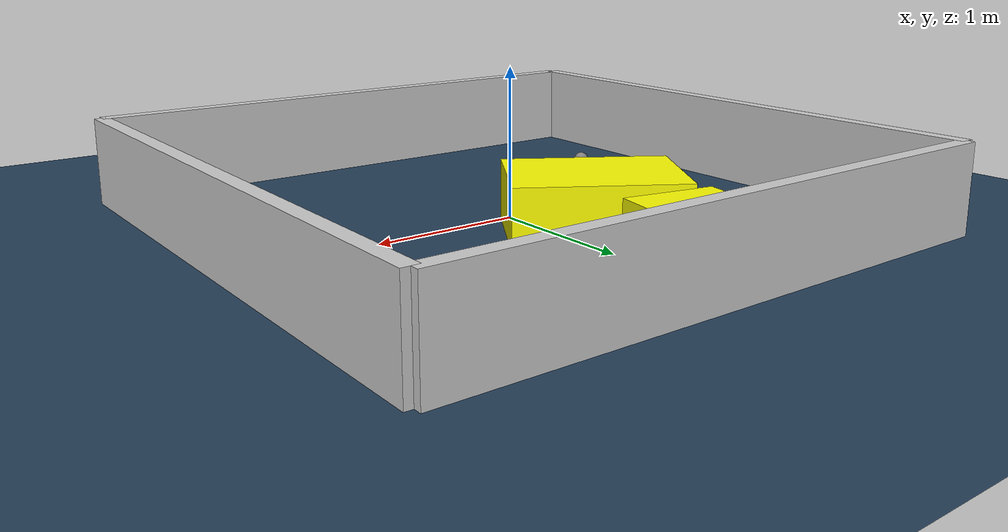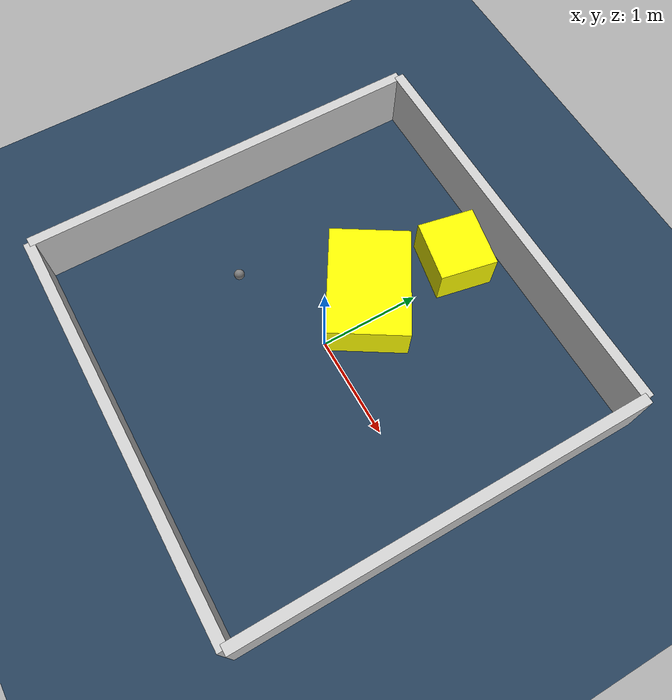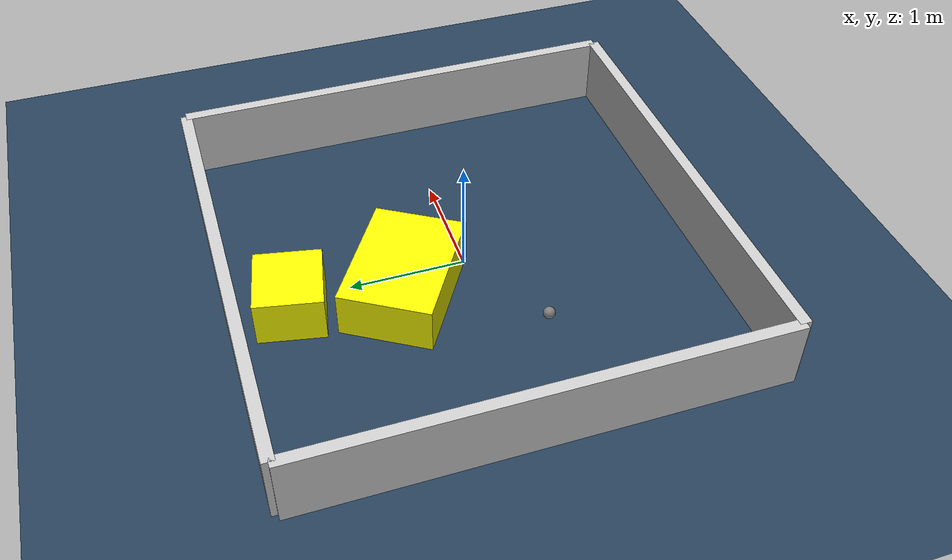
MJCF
<?xml version="1.0" ?>
<mujoco model="generated_environment">
  <option timestep="0.01" integrator="RK4" cone="elliptic"/>
  <default>
    <geom density="1"/>
  </default>
  <asset>
    <texture builtin="gradient" height="3072" rgb1="0.3 0.5 0.7" rgb2="0 0 0" type="skybox" width="512"/>
    <texture builtin="checker" height="300" mark="edge" markrgb="0.8 0.8 0.8" name="groundplane" rgb1="0.2 0.3 0.4" rgb2="0.1 0.2 0.3" type="2d" width="300"/>
    <material name="groundplane" reflectance="0.2" texrepeat="5 5" texture="groundplane" texuniform="true"/>
    <material name="robot" rgba="0.0 1.0 0.0 1"/>
  </asset>
  <worldbody>
    <light dir="0 0 -1" directional="true" pos="0 0 1.5"/>
    <geom condim="4" friction="1.0 0.005 0.001" material="groundplane" name="floor" size="0 0 0.05" type="plane"/>
    <body name="walls">
      <geom name="wall_1" condim="4" pos="-2.0 0.0 0.3" rgba="0.800000011920929 0.800000011920929 0.800000011920929 1.0" size="0.05 2.0 0.3" type="box"/>
      <geom name="wall_2" condim="4" pos="2.0 0.0 0.3" rgba="0.800000011920929 0.800000011920929 0.800000011920929 1.0" size="0.05 2.0 0.3" type="box"/>
      <geom name="wall_3" condim="4" pos="0.0 -2.0 0.3" rgba="0.800000011920929 0.800000011920929 0.800000011920929 1.0" size="2.0 0.05 0.3" type="box"/>
      <geom name="wall_4" condim="4" pos="0.0 2.0 0.3" rgba="0.800000011920929 0.800000011920929 0.800000011920929 1.0" size="2.0 0.05 0.3" type="box"/>
    </body>
    <body name="robot">
      <joint name="joint_x" type="slide" pos="0 0 0" axis="1 0 0"/>
      <joint name="joint_y" type="slide" pos="0 0 0" axis="0 1 0"/>
      <geom name="robot" type="sphere" pos="-0.9610934936101996 -0.3974674925858914 0.2" size="0.05" mass="5." friction="1.0 0.005 0.0001" condim="4"/>
      <site name="sensor_ball"/>
    </body>
    <body name="obstacle_1_movable">
      <geom name="obstacle_1_movable" condim="4" pos="-0.2051474289060471 0.5887899193521973 0.2" euler="0 0 328.1938040009782" friction="1.0 0.005 0.001" rgba="1 1 0 1" size="0.5492197292067329 0.3919110713191013 0.2" type="box" mass="0.1"/>
      <joint type="free"/>
    </body>
    <body name="obstacle_2_movable">
      <geom name="obstacle_2_movable" condim="4" pos="-0.13384075661566386 1.5195763615031224 0.2" euler="0 0 348.95542659439457" friction="1.0 0.005 0.001" rgba="1 1 0 1" size="0.30518525464145874 0.2818871043190426 0.2" type="box" mass="0.1"/>
      <joint type="free"/>
    </body>
  </worldbody>
  <actuator>
    <motor name="actuator_x" joint="joint_x" gear="1" ctrlrange="-1 1"/>
    <motor name="actuator_y" joint="joint_y" gear="1" ctrlrange="-1 1"/>
  </actuator>
</mujoco>
